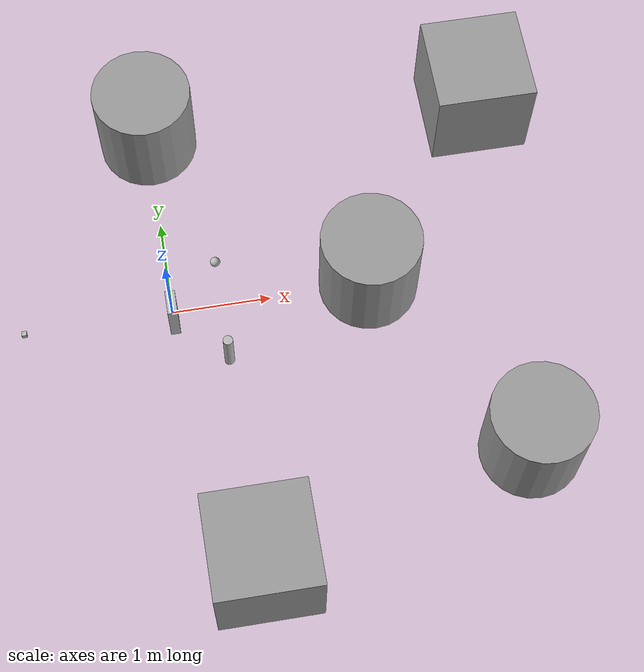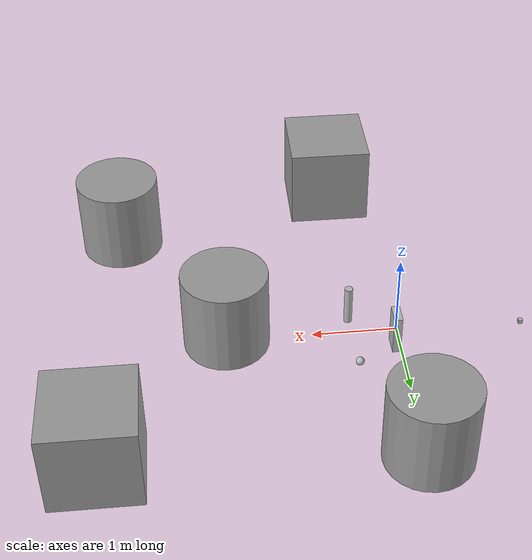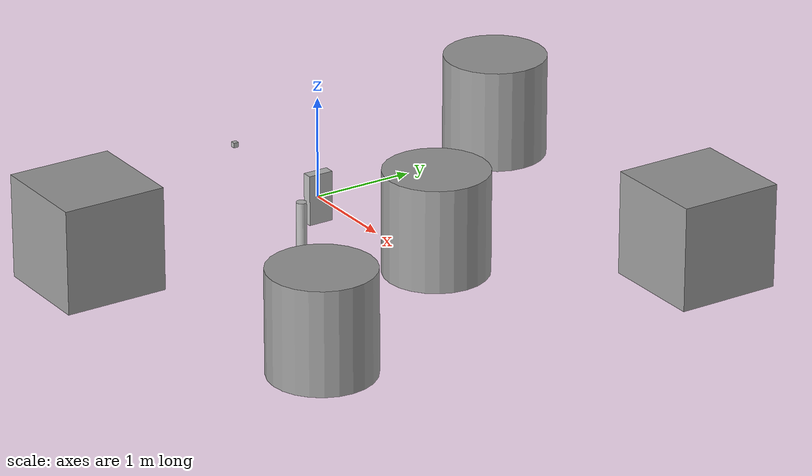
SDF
<sdf version="1.7">
 <world name="ray_sensor_demo">
  <gravity>0 0 0</gravity>
  <light name="sun" type="directional">
   <pose>0 0 10 0 -0 0</pose>
   <diffuse>0.8 0.8 0.8 1</diffuse>
   <specular>0.2 0.2 0.2 1</specular>
   <attenuation>
    <range>1000</range>
    <constant>0.9</constant>
    <linear>0.01</linear>
    <quadratic>0.001</quadratic>
   </attenuation>
   <direction>-0.5 0.1 -0.9</direction>
   <spot><inner_angle>0</inner_angle><outer_angle>0</outer_angle><falloff>0</falloff></spot>
  </light>
  <model name="ray_sensor_box">
   <pose>-1.5 0 0 0 -0 0</pose>
   <link name="laser_link">
    <visual name="visual_box"><geometry><box><size>0.05 0.05 0.05</size></box></geometry></visual>
    <collision name="collision_box">
     <geometry><box><size>0.05 0.05 0.05</size></box></geometry>
     <laser_retro>100</laser_retro>
    </collision>
    <sensor name="sensor_ray" type="ray">
     <ray>
      <scan>
       <horizontal>
        <samples>1800</samples>
        <resolution>1</resolution>
        <min_angle>-1.5236</min_angle>
        <max_angle>1.5236</max_angle>
       </horizontal>
       <vertical>
        <samples>16</samples>
        <resolution>1</resolution>
        <min_angle>-0</min_angle>
        <max_angle>0.1</max_angle>
       </vertical>
      </scan>
      <range><min>0.05</min><max>50</max></range>
     </ray>
     <always_on>1</always_on>
     <update_rate>10</update_rate>
     <plugin name="pc2" filename="libgazebo_ros_ray_sensor.so">
      <ros><remapping>~/out:=/sensor/lidar/point_cloud2</remapping></ros>
      <output_type>sensor_msgs/PointCloud2</output_type>
     </plugin>
     <plugin name="pc" filename="libgazebo_ros_ray_sensor.so">
      <ros><namespace>/ray</namespace><remapping>~/out:=pointcloud</remapping></ros>
      <output_type>sensor_msgs/PointCloud</output_type>
     </plugin>
     <plugin name="laserscan" filename="libgazebo_ros_ray_sensor.so">
      <ros><namespace>/ray</namespace><remapping>~/out:=laserscan</remapping></ros>
      <output_type>sensor_msgs/LaserScan</output_type>
     </plugin>
     <plugin name="range" filename="libgazebo_ros_ray_sensor.so">
      <ros><namespace>/ray</namespace><remapping>~/out:=range</remapping></ros>
      <output_type>sensor_msgs/Range</output_type>
     </plugin>
    </sensor>
    <inertial>
     <inertia><ixx>1</ixx><ixy>0</ixy><ixz>0</ixz><iyy>1</iyy><iyz>0</iyz><izz>1</izz></inertia>
     <mass>1</mass>
    </inertial>
   </link>
  </model>
  <model name="box">
   <link name="base_link">
    <visual name="visual"><geometry><box><size>0.1 0.25 0.5</size></box></geometry></visual>
    <collision name="collision">
     <geometry><box><size>0.1 0.25 0.5</size></box></geometry>
     <laser_retro>100</laser_retro>
    </collision>
    <inertial>
     <inertia><ixx>1</ixx><ixy>0</ixy><ixz>0</ixz><iyy>1</iyy><iyz>0</iyz><izz>1</izz></inertia>
     <mass>1</mass>
    </inertial>
   </link>
  </model>
  <model name="sphere">
   <pose>0.5 0.5 0 0 -0 0</pose>
   <link name="base_link">
    <visual name="visual"><geometry><sphere><radius>0.05</radius></sphere></geometry></visual>
    <collision name="collision">
     <geometry><sphere><radius>0.05</radius></sphere></geometry>
     <laser_retro>80</laser_retro>
    </collision>
    <inertial>
     <inertia><ixx>1</ixx><ixy>0</ixy><ixz>0</ixz><iyy>1</iyy><iyz>0</iyz><izz>1</izz></inertia>
     <mass>1</mass>
    </inertial>
   </link>
  </model>
  <model name="cylinder">
   <pose>0.5 -0.5 0 0 -0 0</pose>
   <link name="base_link">
    <visual name="visual">
     <geometry><cylinder><radius>0.05</radius><length>0.5</length></cylinder></geometry>
    </visual>
    <collision name="collision">
     <geometry><cylinder><radius>0.05</radius><length>0.5</length></cylinder></geometry>
     <laser_retro>60</laser_retro>
    </collision>
    <inertial>
     <inertia><ixx>1</ixx><ixy>0</ixy><ixz>0</ixz><iyy>1</iyy><iyz>0</iyz><izz>1</izz></inertia>
     <mass>1</mass>
    </inertial>
   </link>
  </model>
  <magnetic_field>6e-06 2.3e-05 -4.2e-05</magnetic_field>
  <atmosphere type="adiabatic"/>
  <physics type="ode">
   <max_step_size>0.001</max_step_size>
   <real_time_factor>1</real_time_factor>
   <real_time_update_rate>1000</real_time_update_rate>
  </physics>
  <scene><ambient>0.4 0.4 0.4 1</ambient><background>0.7 0.7 0.7 1</background><shadows>1</shadows></scene>
  <audio><device>default</device></audio>
  <spherical_coordinates>
   <surface_model>EARTH_WGS84</surface_model>
   <latitude_deg>0</latitude_deg>
   <longitude_deg>0</longitude_deg>
   <elevation>0</elevation>
   <heading_deg>0</heading_deg>
  </spherical_coordinates>
  <model name="unit_box">
   <pose>0.507221 -2.76307 0.5 0 -0 0</pose>
   <link name="link">
    <inertial>
     <mass>1</mass>
     <inertia>
      <ixx>0.166667</ixx>
      <ixy>0</ixy>
      <ixz>0</ixz>
      <iyy>0.166667</iyy>
      <iyz>0</iyz>
      <izz>0.166667</izz>
     </inertia>
    </inertial>
    <collision name="collision"><geometry><box><size>1 1 1</size></box></geometry></collision>
    <visual name="visual">
     <geometry><box><size>1 1 1</size></box></geometry>
     <material>
      <script><name>Gazebo/Grey</name><uri>file://media/materials/scripts/gazebo.material</uri></script>
     </material>
    </visual>
   </link>
  </model>
  <model name="unit_cylinder">
   <pose>3.22807 -2.00213 0.5 0 -0 0</pose>
   <link name="link">
    <inertial>
     <mass>1</mass>
     <inertia><ixx>0.145833</ixx><ixy>0</ixy><ixz>0</ixz><iyy>0.145833</iyy><iyz>0</iyz><izz>0.125</izz></inertia>
    </inertial>
    <collision name="collision">
     <geometry><cylinder><radius>0.5</radius><length>1</length></cylinder></geometry>
    </collision>
    <visual name="visual">
     <geometry><cylinder><radius>0.5</radius><length>1</length></cylinder></geometry>
     <material>
      <script><name>Gazebo/Grey</name><uri>file://media/materials/scripts/gazebo.material</uri></script>
     </material>
    </visual>
   </link>
  </model>
  <model name="unit_box_0">
   <pose>3.44028 1.85884 0.5 0 -0 0</pose>
   <link name="link">
    <inertial>
     <mass>1</mass>
     <inertia>
      <ixx>0.166667</ixx>
      <ixy>0</ixy>
      <ixz>0</ixz>
      <iyy>0.166667</iyy>
      <iyz>0</iyz>
      <izz>0.166667</izz>
     </inertia>
    </inertial>
    <collision name="collision"><geometry><box><size>1 1 1</size></box></geometry></collision>
    <visual name="visual">
     <geometry><box><size>1 1 1</size></box></geometry>
     <material>
      <script><name>Gazebo/Grey</name><uri>file://media/materials/scripts/gazebo.material</uri></script>
     </material>
    </visual>
   </link>
  </model>
  <model name="unit_cylinder_0">
   <pose>0 2 0.5 0 -0 0</pose>
   <link name="link">
    <inertial>
     <mass>1</mass>
     <inertia><ixx>0.145833</ixx><ixy>0</ixy><ixz>0</ixz><iyy>0.145833</iyy><iyz>0</iyz><izz>0.125</izz></inertia>
    </inertial>
    <collision name="collision">
     <geometry><cylinder><radius>0.5</radius><length>1</length></cylinder></geometry>
    </collision>
    <visual name="visual">
     <geometry><cylinder><radius>0.5</radius><length>1</length></cylinder></geometry>
     <material>
      <script><name>Gazebo/Grey</name><uri>file://media/materials/scripts/gazebo.material</uri></script>
     </material>
    </visual>
   </link>
  </model>
  <model name="unit_cylinder_1">
   <pose>2 0 0.5 0 -0 0</pose>
   <link name="link">
    <inertial>
     <mass>1</mass>
     <inertia><ixx>0.145833</ixx><ixy>0</ixy><ixz>0</ixz><iyy>0.145833</iyy><iyz>0</iyz><izz>0.125</izz></inertia>
    </inertial>
    <collision name="collision">
     <geometry><cylinder><radius>0.5</radius><length>1</length></cylinder></geometry>
    </collision>
    <visual name="visual">
     <geometry><cylinder><radius>0.5</radius><length>1</length></cylinder></geometry>
     <material>
      <script><name>Gazebo/Grey</name><uri>file://media/materials/scripts/gazebo.material</uri></script>
     </material>
    </visual>
   </link>
  </model>
 </world>
</sdf>
